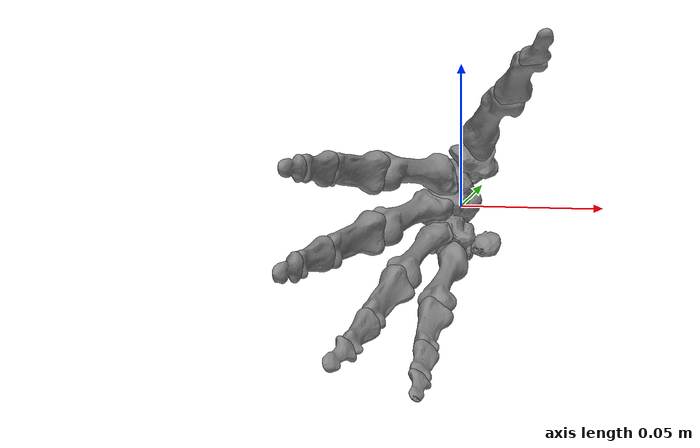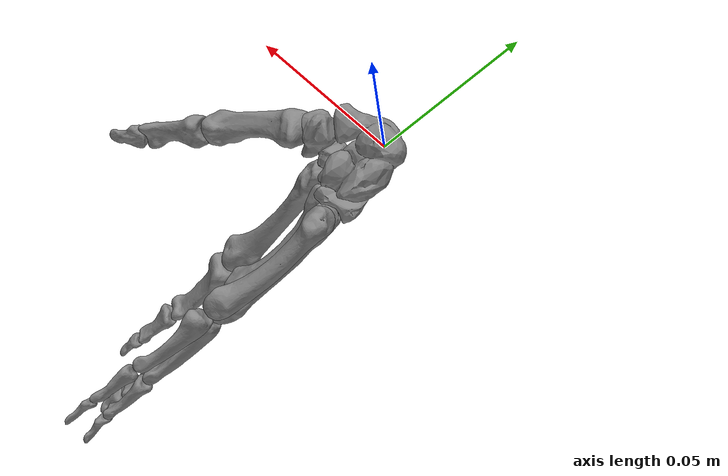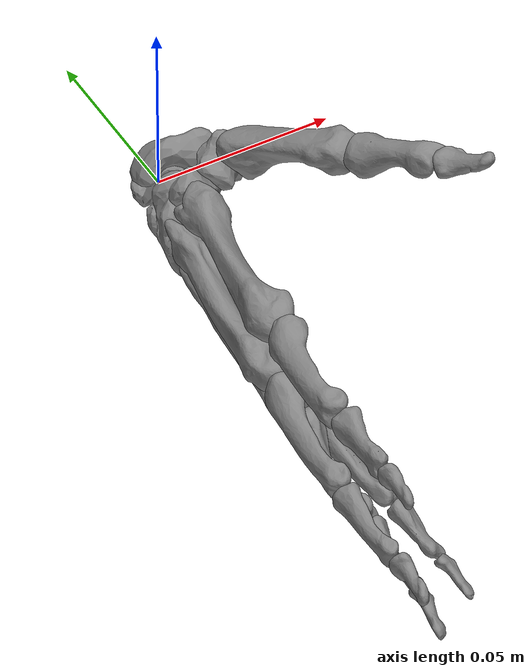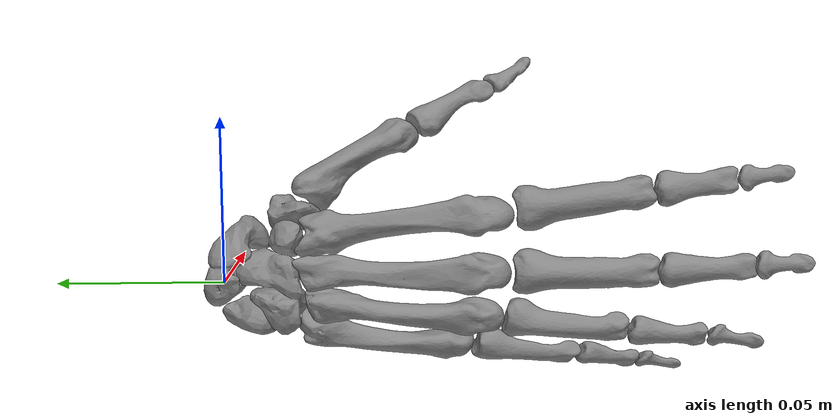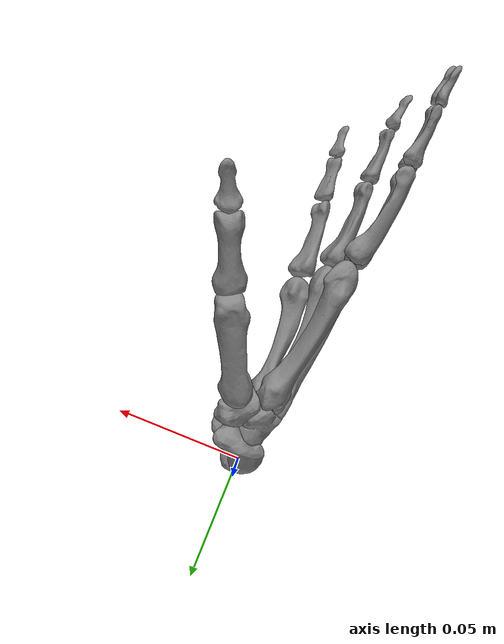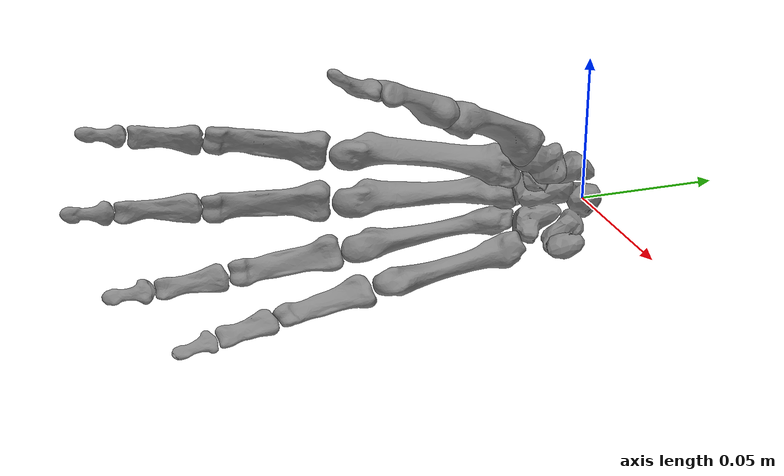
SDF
<?xml version='1.0' encoding='utf8'?>
<sdf version="1.6">
	<model name="Hand9DOF">
		<pose>0.0 0.0 0.0 0.0 -1.5707963705062866 0.0</pose>
		<link name="Wrist">
			<gravity>true</gravity>
			<self_collide>true</self_collide>
			<pose>0.0 0.0 0.0 0.0 -0.0 0.0</pose>
			<inertial>
				<mass>1.0</mass>
				<inertia>
					<ixx>1.0</ixx>
					<ixy>0.0</ixy>
					<ixz>0.0</ixz>
					<iyy>1.0</iyy>
					<iyz>0.0</iyz>
					<izz>1.0</izz>
				</inertia>
				<pose>0 0 0 0 0 0</pose>
			</inertial>
			<visual name="VIS_wrist">
				<pose>0.0 0.0 0.0 -0.0 1.570796251296997 0.0</pose>
				<geometry>
					<mesh>
						<uri>model://Hand9DOF/meshes/visual/VIS_wrist.dae</uri>
						<scale>1.0 1.0 1.0</scale>
					</mesh>
				</geometry>
			</visual>
		</link>
		<link name="IndexCMC">
			<gravity>true</gravity>
			<self_collide>true</self_collide>
			<pose>0.013055000454187393 -0.019176999107003212 -0.00018200000340584666 0.0 -0.0 0.0</pose>
			<inertial>
				<mass>1.0</mass>
				<inertia>
					<ixx>1.0</ixx>
					<ixy>0.0</ixy>
					<ixz>0.0</ixz>
					<iyy>1.0</iyy>
					<iyz>0.0</iyz>
					<izz>1.0</izz>
				</inertia>
				<pose>0 0 0 0 0 0</pose>
			</inertial>
			<visual name="VIS_2mc">
				<pose>-1.0988230769726215e-07 3.725290298461914e-09 -1.6081712317372876e-07 -0.0 1.570796251296997 0.0</pose>
				<geometry>
					<mesh>
						<uri>model://Hand9DOF/meshes/visual/VIS_2mc.dae</uri>
						<scale>1.0 1.0 1.0</scale>
					</mesh>
				</geometry>
			</visual>
		</link>
		<link name="IndexMCP_FE">
			<gravity>true</gravity>
			<self_collide>true</self_collide>
			<pose>0.022178000770509243 -0.0809169989079237 0.010978999533108436 0.0 -0.0 0.0</pose>
			<inertial>
				<mass>1.0</mass>
				<inertia>
					<ixx>1.0</ixx>
					<ixy>0.0</ixy>
					<ixz>0.0</ixz>
					<iyy>1.0</iyy>
					<iyz>0.0</iyz>
					<izz>1.0</izz>
				</inertia>
				<pose>0 0 0 0 0 0</pose>
			</inertial>
		</link>
		<link name="IndexMCP_AA">
			<gravity>true</gravity>
			<self_collide>true</self_collide>
			<pose>0.022178000770509243 -0.0809169989079237 0.010978999533108436 0.0 -0.0 0.0</pose>
			<inertial>
				<mass>1.0</mass>
				<inertia>
					<ixx>1.0</ixx>
					<ixy>0.0</ixy>
					<ixz>0.0</ixz>
					<iyy>1.0</iyy>
					<iyz>0.0</iyz>
					<izz>1.0</izz>
				</inertia>
				<pose>0 0 0 0 0 0</pose>
			</inertial>
			<visual name="VIS_2proxph">
				<pose>6.621689419006316e-09 -1.1920928955078125e-07 -1.1195747662284816e-09 -0.0 1.570796251296997 0.0</pose>
				<geometry>
					<mesh>
						<uri>model://Hand9DOF/meshes/visual/VIS_2proxph.dae</uri>
						<scale>1.0 1.0 1.0</scale>
					</mesh>
				</geometry>
			</visual>
		</link>
		<link name="IndexPIP">
			<gravity>true</gravity>
			<self_collide>true</self_collide>
			<pose>0.02969500096514821 -0.12219000048935413 0.018304999437532388 0.0 -0.0 0.0</pose>
			<inertial>
				<mass>1.0</mass>
				<inertia>
					<ixx>1.0</ixx>
					<ixy>0.0</ixy>
					<ixz>0.0</ixz>
					<iyy>1.0</iyy>
					<iyz>0.0</iyz>
					<izz>1.0</izz>
				</inertia>
				<pose>0 0 0 0 0 0</pose>
			</inertial>
			<visual name="VIS_2midph">
				<pose>1.5381818485593612e-08 -1.4901161193847656e-07 -2.3835120543935773e-08 -0.0 1.570796251296997 0.0</pose>
				<geometry>
					<mesh>
						<uri>model://Hand9DOF/meshes/visual/VIS_2midph.dae</uri>
						<scale>1.0 1.0 1.0</scale>
					</mesh>
				</geometry>
			</visual>
		</link>
		<link name="IndexDIP">
			<gravity>true</gravity>
			<self_collide>true</self_collide>
			<pose>0.033028000965714455 -0.1470780000090599 0.019524999413988553 0.0 -0.0 0.0</pose>
			<inertial>
				<mass>1.0</mass>
				<inertia>
					<ixx>1.0</ixx>
					<ixy>0.0</ixy>
					<ixz>0.0</ixz>
					<iyy>1.0</iyy>
					<iyz>0.0</iyz>
					<izz>1.0</izz>
				</inertia>
				<pose>0 0 0 0 0 0</pose>
			</inertial>
			<visual name="VIS_2distph">
				<pose>1.7152355979987988e-08 -8.940696716308594e-08 -4.9570347826488614e-09 -0.0 1.570796251296997 0.0</pose>
				<geometry>
					<mesh>
						<uri>model://Hand9DOF/meshes/visual/VIS_2distph.dae</uri>
						<scale>1.0 1.0 1.0</scale>
					</mesh>
				</geometry>
			</visual>
		</link>
		<link name="MiddleCMC">
			<gravity>true</gravity>
			<self_collide>true</self_collide>
			<pose>0.003857000032439828 -0.015337999910116196 0.002463999902829528 0.0 -0.0 0.0</pose>
			<inertial>
				<mass>1.0</mass>
				<inertia>
					<ixx>1.0</ixx>
					<ixy>0.0</ixy>
					<ixz>0.0</ixz>
					<iyy>1.0</iyy>
					<iyz>0.0</iyz>
					<izz>1.0</izz>
				</inertia>
				<pose>0 0 0 0 0 0</pose>
			</inertial>
			<visual name="VIS_3mc">
				<pose>-3.287100298621226e-07 4.423782229423523e-07 -3.501189382859593e-07 -0.0 1.570796251296997 0.0</pose>
				<geometry>
					<mesh>
						<uri>model://Hand9DOF/meshes/visual/VIS_3mc.dae</uri>
						<scale>1.0 1.0 1.0</scale>
					</mesh>
				</geometry>
			</visual>
		</link>
		<link name="MiddleMCP_FE">
			<gravity>true</gravity>
			<self_collide>true</self_collide>
			<pose>0.004709000058937818 -0.08058300241827965 0.011482000118121505 0.0 -0.0 0.0</pose>
			<inertial>
				<mass>1.0</mass>
				<inertia>
					<ixx>1.0</ixx>
					<ixy>0.0</ixy>
					<ixz>0.0</ixz>
					<iyy>1.0</iyy>
					<iyz>0.0</iyz>
					<izz>1.0</izz>
				</inertia>
				<pose>0 0 0 0 0 0</pose>
			</inertial>
		</link>
		<link name="MiddleMCP_AA">
			<gravity>true</gravity>
			<self_collide>true</self_collide>
			<pose>0.004709000058937818 -0.08058300241827965 0.011482000118121505 0.0 -0.0 0.0</pose>
			<inertial>
				<mass>1.0</mass>
				<inertia>
					<ixx>1.0</ixx>
					<ixy>0.0</ixy>
					<ixz>0.0</ixz>
					<iyy>1.0</iyy>
					<iyz>0.0</iyz>
					<izz>1.0</izz>
				</inertia>
				<pose>0 0 0 0 0 0</pose>
			</inertial>
			<visual name="VIS_3proxph">
				<pose>3.7897471827363916e-09 1.4901161193847656e-07 -1.454564113601009e-08 -0.0 1.570796251296997 0.0</pose>
				<geometry>
					<mesh>
						<uri>model://Hand9DOF/meshes/visual/VIS_3proxph.dae</uri>
						<scale>1.0 1.0 1.0</scale>
					</mesh>
				</geometry>
			</visual>
		</link>
		<link name="MiddlePIP">
			<gravity>true</gravity>
			<self_collide>true</self_collide>
			<pose>0.006359000049997121 -0.12479400262236595 0.017712000058963895 0.0 -0.0 0.0</pose>
			<inertial>
				<mass>1.0</mass>
				<inertia>
					<ixx>1.0</ixx>
					<ixy>0.0</ixy>
					<ixz>0.0</ixz>
					<iyy>1.0</iyy>
					<iyz>0.0</iyz>
					<izz>1.0</izz>
				</inertia>
				<pose>0 0 0 0 0 0</pose>
			</inertial>
			<visual name="VIS_3midph">
				<pose>-2.0894990626629806e-08 1.1920928955078125e-07 -3.304752382859988e-08 -0.0 1.570796251296997 0.0</pose>
				<geometry>
					<mesh>
						<uri>model://Hand9DOF/meshes/visual/VIS_3midph.dae</uri>
						<scale>1.0 1.0 1.0</scale>
					</mesh>
				</geometry>
			</visual>
		</link>
		<link name="MiddleDIP">
			<gravity>true</gravity>
			<self_collide>true</self_collide>
			<pose>0.007724000082816929 -0.15384100191295147 0.019666000036522746 0.0 -0.0 0.0</pose>
			<inertial>
				<mass>1.0</mass>
				<inertia>
					<ixx>1.0</ixx>
					<ixy>0.0</ixy>
					<ixz>0.0</ixz>
					<iyy>1.0</iyy>
					<iyz>0.0</iyz>
					<izz>1.0</izz>
				</inertia>
				<pose>0 0 0 0 0 0</pose>
			</inertial>
			<visual name="VIS_3distph">
				<pose>-1.5454579838092286e-08 8.940696716308594e-08 -1.4318016106074083e-08 -0.0 1.570796251296997 0.0</pose>
				<geometry>
					<mesh>
						<uri>model://Hand9DOF/meshes/visual/VIS_3distph.dae</uri>
						<scale>1.0 1.0 1.0</scale>
					</mesh>
				</geometry>
			</visual>
		</link>
		<link name="RingCMC">
			<gravity>true</gravity>
			<self_collide>true</self_collide>
			<pose>-0.006366000045090914 -0.017550000920891762 0.0015780000248923898 0.0 -0.0 0.0</pose>
			<inertial>
				<mass>1.0</mass>
				<inertia>
					<ixx>1.0</ixx>
					<ixy>0.0</ixy>
					<ixz>0.0</ixz>
					<iyy>1.0</iyy>
					<iyz>0.0</iyz>
					<izz>1.0</izz>
				</inertia>
				<pose>0 0 0 0 0 0</pose>
			</inertial>
			<visual name="VIS_4mc">
				<pose>-1.1910253339131316e-10 1.471489667892456e-07 -4.397156203594932e-07 -0.0 1.570796251296997 0.0</pose>
				<geometry>
					<mesh>
						<uri>model://Hand9DOF/meshes/visual/VIS_4mc.dae</uri>
						<scale>1.0 1.0 1.0</scale>
					</mesh>
				</geometry>
			</visual>
		</link>
		<link name="RingMCP_FE">
			<gravity>true</gravity>
			<self_collide>true</self_collide>
			<pose>-0.00988400005735457 -0.07926200143992901 0.005667000194080174 0.0 -0.0 0.0</pose>
			<inertial>
				<mass>1.0</mass>
				<inertia>
					<ixx>1.0</ixx>
					<ixy>0.0</ixy>
					<ixz>0.0</ixz>
					<iyy>1.0</iyy>
					<iyz>0.0</iyz>
					<izz>1.0</izz>
				</inertia>
				<pose>0 0 0 0 0 0</pose>
			</inertial>
		</link>
		<link name="RingMCP_AA">
			<gravity>true</gravity>
			<self_collide>true</self_collide>
			<pose>-0.00988400005735457 -0.07926200143992901 0.005667000194080174 0.0 -0.0 0.0</pose>
			<inertial>
				<mass>1.0</mass>
				<inertia>
					<ixx>1.0</ixx>
					<ixy>0.0</ixy>
					<ixz>0.0</ixz>
					<iyy>1.0</iyy>
					<iyz>0.0</iyz>
					<izz>1.0</izz>
				</inertia>
				<pose>0 0 0 0 0 0</pose>
			</inertial>
			<visual name="VIS_4proxph">
				<pose>1.434799612454185e-09 2.9802322387695312e-08 -1.4716059482111632e-08 -0.0 1.570796251296997 0.0</pose>
				<geometry>
					<mesh>
						<uri>model://Hand9DOF/meshes/visual/VIS_4proxph.dae</uri>
						<scale>1.0 1.0 1.0</scale>
					</mesh>
				</geometry>
			</visual>
		</link>
		<link name="RingPIP">
			<gravity>true</gravity>
			<self_collide>true</self_collide>
			<pose>-0.013412000145763159 -0.11951700039207935 0.007012000191025436 0.0 -0.0 0.0</pose>
			<inertial>
				<mass>1.0</mass>
				<inertia>
					<ixx>1.0</ixx>
					<ixy>0.0</ixy>
					<ixz>0.0</ixz>
					<iyy>1.0</iyy>
					<iyz>0.0</iyz>
					<izz>1.0</izz>
				</inertia>
				<pose>0 0 0 0 0 0</pose>
			</inertial>
			<visual name="VIS_4midph">
				<pose>2.264577858568373e-09 -8.940696716308594e-08 -2.196733639436843e-08 -0.0 1.570796251296997 0.0</pose>
				<geometry>
					<mesh>
						<uri>model://Hand9DOF/meshes/visual/VIS_4midph.dae</uri>
						<scale>1.0 1.0 1.0</scale>
					</mesh>
				</geometry>
			</visual>
		</link>
		<link name="RingDIP">
			<gravity>true</gravity>
			<self_collide>true</self_collide>
			<pose>-0.01572900009341538 -0.1443060003221035 0.007575000170618296 0.0 -0.0 0.0</pose>
			<inertial>
				<mass>1.0</mass>
				<inertia>
					<ixx>1.0</ixx>
					<ixy>0.0</ixy>
					<ixz>0.0</ixz>
					<iyy>1.0</iyy>
					<iyz>0.0</iyz>
					<izz>1.0</izz>
				</inertia>
				<pose>0 0 0 0 0 0</pose>
			</inertial>
			<visual name="VIS_4distph">
				<pose>-9.885120277886017e-09 0.0 -2.6333216496254863e-08 -0.0 1.570796251296997 0.0</pose>
				<geometry>
					<mesh>
						<uri>model://Hand9DOF/meshes/visual/VIS_4distph.dae</uri>
						<scale>1.0 1.0 1.0</scale>
					</mesh>
				</geometry>
			</visual>
		</link>
		<link name="LittleCMC">
			<gravity>true</gravity>
			<self_collide>true</self_collide>
			<pose>-0.013151000253856182 -0.017550000920891762 0.0015780000248923898 0.0 -0.0 0.0</pose>
			<inertial>
				<mass>1.0</mass>
				<inertia>
					<ixx>1.0</ixx>
					<ixy>0.0</ixy>
					<ixz>0.0</ixz>
					<iyy>1.0</iyy>
					<iyz>0.0</iyz>
					<izz>1.0</izz>
				</inertia>
				<pose>0 0 0 0 0 0</pose>
			</inertial>
			<visual name="VIS_5mc">
				<pose>-1.1910253339131316e-10 1.471489667892456e-07 -4.402278932502668e-07 -0.0 1.570796251296997 0.0</pose>
				<geometry>
					<mesh>
						<uri>model://Hand9DOF/meshes/visual/VIS_5mc.dae</uri>
						<scale>1.0 1.0 1.0</scale>
					</mesh>
				</geometry>
			</visual>
		</link>
		<link name="LittleMCP_FE">
			<gravity>true</gravity>
			<self_collide>true</self_collide>
			<pose>-0.019501000177115202 -0.07116799987852573 -0.003386999829672277 0.0 -0.0 0.0</pose>
			<inertial>
				<mass>1.0</mass>
				<inertia>
					<ixx>1.0</ixx>
					<ixy>0.0</ixy>
					<ixz>0.0</ixz>
					<iyy>1.0</iyy>
					<iyz>0.0</iyz>
					<izz>1.0</izz>
				</inertia>
				<pose>0 0 0 0 0 0</pose>
			</inertial>
		</link>
		<link name="LittleMCP_AA">
			<gravity>true</gravity>
			<self_collide>true</self_collide>
			<pose>-0.019501000177115202 -0.07116799987852573 -0.003386999829672277 0.0 -0.0 0.0</pose>
			<inertial>
				<mass>1.0</mass>
				<inertia>
					<ixx>1.0</ixx>
					<ixy>0.0</ixy>
					<ixz>0.0</ixz>
					<iyy>1.0</iyy>
					<iyz>0.0</iyz>
					<izz>1.0</izz>
				</inertia>
				<pose>0 0 0 0 0 0</pose>
			</inertial>
			<visual name="VIS_5proxph">
				<pose>2.1183568232885364e-09 2.9802322387695312e-08 -5.663236102293467e-09 -0.0 1.570796251296997 0.0</pose>
				<geometry>
					<mesh>
						<uri>model://Hand9DOF/meshes/visual/VIS_5proxph.dae</uri>
						<scale>1.0 1.0 1.0</scale>
					</mesh>
				</geometry>
			</visual>
		</link>
		<link name="LittlePIP">
			<gravity>true</gravity>
			<self_collide>true</self_collide>
			<pose>-0.02478000009432435 -0.1067309994250536 -0.006265999865718186 0.0 -0.0 0.0</pose>
			<inertial>
				<mass>1.0</mass>
				<inertia>
					<ixx>1.0</ixx>
					<ixy>0.0</ixy>
					<ixz>0.0</ixz>
					<iyy>1.0</iyy>
					<iyz>0.0</iyz>
					<izz>1.0</izz>
				</inertia>
				<pose>0 0 0 0 0 0</pose>
			</inertial>
			<visual name="VIS_5midph">
				<pose>2.8412747710149233e-08 0.0 -7.458771378310303e-09 -0.0 1.570796251296997 0.0</pose>
				<geometry>
					<mesh>
						<uri>model://Hand9DOF/meshes/visual/VIS_5midph.dae</uri>
						<scale>1.0 1.0 1.0</scale>
					</mesh>
				</geometry>
			</visual>
		</link>
		<link name="LittleDIP">
			<gravity>true</gravity>
			<self_collide>true</self_collide>
			<pose>-0.027651000069454312 -0.12740799970924854 -0.008508999948389828 0.0 -0.0 0.0</pose>
			<inertial>
				<mass>1.0</mass>
				<inertia>
					<ixx>1.0</ixx>
					<ixy>0.0</ixy>
					<ixz>0.0</ixz>
					<iyy>1.0</iyy>
					<iyz>0.0</iyz>
					<izz>1.0</izz>
				</inertia>
				<pose>0 0 0 0 0 0</pose>
			</inertial>
			<visual name="VIS_5distph">
				<pose>-1.0533459438022419e-08 0.0 -3.950238358640945e-09 -0.0 1.570796251296997 0.0</pose>
				<geometry>
					<mesh>
						<uri>model://Hand9DOF/meshes/visual/VIS_5distph.dae</uri>
						<scale>1.0 1.0 1.0</scale>
					</mesh>
				</geometry>
			</visual>
		</link>
		<link name="trapezium">
			<gravity>true</gravity>
			<self_collide>true</self_collide>
			<pose>0.019279999658465385 -0.01962199993431568 -0.007980999536812305 0.0 -0.0 0.0</pose>
			<inertial>
				<mass>1.0</mass>
				<inertia>
					<ixx>1.0</ixx>
					<ixy>0.0</ixy>
					<ixz>0.0</ixz>
					<iyy>1.0</iyy>
					<iyz>0.0</iyz>
					<izz>1.0</izz>
				</inertia>
				<pose>0 0 0 0 0 0</pose>
			</inertial>
			<visual name="VIS_trapezium">
				<pose>-1.8007399660291412e-07 1.1362135410308838e-07 -3.7759269844173105e-07 -0.0 1.570796251296997 0.0</pose>
				<geometry>
					<mesh>
						<uri>model://Hand9DOF/meshes/visual/VIS_trapezium.dae</uri>
						<scale>1.0 1.0 1.0</scale>
					</mesh>
				</geometry>
			</visual>
		</link>
		<link name="ThumbTMC_FE">
			<gravity>true</gravity>
			<self_collide>true</self_collide>
			<pose>0.019279999658465385 -0.01962199993431568 -0.007980999536812305 0.0 -0.0 0.0</pose>
			<inertial>
				<mass>1.0</mass>
				<inertia>
					<ixx>1.0</ixx>
					<ixy>0.0</ixy>
					<ixz>0.0</ixz>
					<iyy>1.0</iyy>
					<iyz>0.0</iyz>
					<izz>1.0</izz>
				</inertia>
				<pose>0 0 0 0 0 0</pose>
			</inertial>
		</link>
		<link name="ThumbTMC_AA">
			<gravity>true</gravity>
			<self_collide>true</self_collide>
			<pose>0.02516599977388978 -0.021548999939113855 -0.012679999694228172 0.0 -0.0 0.0</pose>
			<inertial>
				<mass>1.0</mass>
				<inertia>
					<ixx>1.0</ixx>
					<ixy>0.0</ixy>
					<ixz>0.0</ixz>
					<iyy>1.0</iyy>
					<iyz>0.0</iyz>
					<izz>1.0</izz>
				</inertia>
				<pose>0 0 0 0 0 0</pose>
			</inertial>
			<visual name="VIS_1mc">
				<pose>-9.053316984974913e-10 2.60770320892334e-08 3.733480191669969e-11 -0.0 1.570796251296997 0.0</pose>
				<geometry>
					<mesh>
						<uri>model://Hand9DOF/meshes/visual/VIS_1mc.dae</uri>
						<scale>1.0 1.0 1.0</scale>
					</mesh>
				</geometry>
			</visual>
		</link>
		<link name="ThumbMCP">
			<gravity>true</gravity>
			<self_collide>true</self_collide>
			<pose>0.04298500018194318 -0.05422299960628152 -0.023180999793112278 0.0 -0.0 0.0</pose>
			<inertial>
				<mass>1.0</mass>
				<inertia>
					<ixx>1.0</ixx>
					<ixy>0.0</ixy>
					<ixz>0.0</ixz>
					<iyy>1.0</iyy>
					<iyz>0.0</iyz>
					<izz>1.0</izz>
				</inertia>
				<pose>0 0 0 0 0 0</pose>
			</inertial>
			<visual name="VIS_thumbprox">
				<pose>1.7501169402578398e-09 5.960464477539063e-08 1.3826320088838884e-09 -0.0 1.570796251296997 0.0</pose>
				<geometry>
					<mesh>
						<uri>model://Hand9DOF/meshes/visual/VIS_thumbprox.dae</uri>
						<scale>1.0 1.0 1.0</scale>
					</mesh>
				</geometry>
			</visual>
		</link>
		<link name="ThumbIP">
			<gravity>true</gravity>
			<self_collide>true</self_collide>
			<pose>0.05698500061407685 -0.08012300031259656 -0.03328099939972162 0.0 -0.0 0.0</pose>
			<inertial>
				<mass>1.0</mass>
				<inertia>
					<ixx>1.0</ixx>
					<ixy>0.0</ixy>
					<ixz>0.0</ixz>
					<iyy>1.0</iyy>
					<iyz>0.0</iyz>
					<izz>1.0</izz>
				</inertia>
				<pose>0 0 0 0 0 0</pose>
			</inertial>
			<visual name="VIS_thumbdist">
				<pose>2.512646313235223e-09 -5.960464477539063e-08 -6.873623004111096e-09 -0.0 1.570796251296997 0.0</pose>
				<geometry>
					<mesh>
						<uri>model://Hand9DOF/meshes/visual/VIS_thumbdist.dae</uri>
						<scale>1.0 1.0 1.0</scale>
					</mesh>
				</geometry>
			</visual>
		</link>
		<joint name="IndexCMC_joint" type="revolute">
			<parent>Wrist</parent>
			<child>IndexCMC</child>
			<axis>
				<xyz>0.988 0.153 0.008</xyz>
				<dynamics>
					<damping>0.0</damping>
					<friction>0.0</friction>
					<spring_reference>0.0</spring_reference>
					<spring_stiffness>0.0</spring_stiffness>
				</dynamics>
				<limit>
					<lower>0.0</lower>
					<upper>0.08726646259971647</upper>
				</limit>
			</axis>
			<physics>
				<ode>
					<cfm_damping>false</cfm_damping>
					<implicit_spring_damper>false</implicit_spring_damper>
					<cfm>0.0</cfm>
					<erp>0.20000000298023224</erp>
				</ode>
			</physics>
		</joint>
		<joint name="IndexMCP_FE_joint" type="revolute">
			<parent>IndexCMC</parent>
			<child>IndexMCP_FE</child>
			<axis>
				<xyz>0.988 0.153 0.008</xyz>
				<dynamics>
					<damping>0.0</damping>
					<friction>0.0</friction>
					<spring_reference>0.0</spring_reference>
					<spring_stiffness>0.0</spring_stiffness>
				</dynamics>
				<limit>
					<lower>-0.17453292519943295</lower>
					<upper>1.5707963267948966</upper>
				</limit>
			</axis>
			<physics>
				<ode>
					<cfm_damping>false</cfm_damping>
					<implicit_spring_damper>false</implicit_spring_damper>
					<cfm>0.0</cfm>
					<erp>0.20000000298023224</erp>
				</ode>
			</physics>
		</joint>
		<joint name="IndexMCP_AA_joint" type="revolute">
			<parent>IndexMCP_FE</parent>
			<child>IndexMCP_AA</child>
			<axis>
				<xyz>-0.030 0.141 0.990</xyz>
				<dynamics>
					<damping>0.0</damping>
					<friction>0.0</friction>
					<spring_reference>0.0</spring_reference>
					<spring_stiffness>0.0</spring_stiffness>
				</dynamics>
				<limit>
					<lower>-0.2617993877991494</lower>
					<upper>0.2617993877991494</upper>
				</limit>
			</axis>
			<physics>
				<ode>
					<cfm_damping>false</cfm_damping>
					<implicit_spring_damper>false</implicit_spring_damper>
					<cfm>0.0</cfm>
					<erp>0.20000000298023224</erp>
				</ode>
			</physics>
		</joint>
		<joint name="IndexPIP_joint" type="revolute">
			<parent>IndexMCP_AA</parent>
			<child>IndexPIP</child>
			<axis>
				<xyz>0.988 0.153 0.008</xyz>
				<dynamics>
					<damping>0.0</damping>
					<friction>0.0</friction>
					<spring_reference>0.0</spring_reference>
					<spring_stiffness>0.0</spring_stiffness>
				</dynamics>
				<limit>
					<lower>0.0</lower>
					<upper>2.0943951023931953</upper>
				</limit>
			</axis>
			<physics>
				<ode>
					<cfm_damping>false</cfm_damping>
					<implicit_spring_damper>false</implicit_spring_damper>
					<cfm>0.0</cfm>
					<erp>0.20000000298023224</erp>
				</ode>
			</physics>
		</joint>
		<joint name="IndexDIP_joint" type="revolute">
			<parent>IndexPIP</parent>
			<child>IndexDIP</child>
			<axis>
				<xyz>0.988 0.153 0.008</xyz>
				<dynamics>
					<damping>0.0</damping>
					<friction>0.0</friction>
					<spring_reference>0.0</spring_reference>
					<spring_stiffness>0.0</spring_stiffness>
				</dynamics>
				<limit>
					<lower>0.0</lower>
					<upper>1.5707963267948966</upper>
				</limit>
			</axis>
			<physics>
				<ode>
					<cfm_damping>false</cfm_damping>
					<implicit_spring_damper>false</implicit_spring_damper>
					<cfm>0.0</cfm>
					<erp>0.20000000298023224</erp>
				</ode>
			</physics>
		</joint>
		<joint name="MiddleCMC_joint" type="revolute">
			<parent>Wrist</parent>
			<child>MiddleCMC</child>
			<axis>
				<xyz>0.980 0.052 0.194</xyz>
				<dynamics>
					<damping>0.0</damping>
					<friction>0.0</friction>
					<spring_reference>0.0</spring_reference>
					<spring_stiffness>0.0</spring_stiffness>
				</dynamics>
				<limit>
					<lower>0.0</lower>
					<upper>0.08726646259971647</upper>
				</limit>
			</axis>
			<physics>
				<ode>
					<cfm_damping>false</cfm_damping>
					<implicit_spring_damper>false</implicit_spring_damper>
					<cfm>0.0</cfm>
					<erp>0.20000000298023224</erp>
				</ode>
			</physics>
		</joint>
		<joint name="MiddleMCP_FE_joint" type="revolute">
			<parent>MiddleCMC</parent>
			<child>MiddleMCP_FE</child>
			<axis>
				<xyz>0.980 0.052 0.194</xyz>
				<dynamics>
					<damping>0.0</damping>
					<friction>0.0</friction>
					<spring_reference>0.0</spring_reference>
					<spring_stiffness>0.0</spring_stiffness>
				</dynamics>
				<limit>
					<lower>-0.17453292519943295</lower>
					<upper>1.5707963267948966</upper>
				</limit>
			</axis>
			<physics>
				<ode>
					<cfm_damping>false</cfm_damping>
					<implicit_spring_damper>false</implicit_spring_damper>
					<cfm>0.0</cfm>
					<erp>0.20000000298023224</erp>
				</ode>
			</physics>
		</joint>
		<joint name="MiddleMCP_AA_joint" type="revolute">
			<parent>MiddleMCP_FE</parent>
			<child>MiddleMCP_AA</child>
			<axis>
				<xyz>-0.198 0.082 0.977</xyz>
				<dynamics>
					<damping>0.0</damping>
					<friction>0.0</friction>
					<spring_reference>0.0</spring_reference>
					<spring_stiffness>0.0</spring_stiffness>
				</dynamics>
				<limit>
					<lower>-0.2617993877991494</lower>
					<upper>0.2617993877991494</upper>
				</limit>
			</axis>
			<physics>
				<ode>
					<cfm_damping>false</cfm_damping>
					<implicit_spring_damper>false</implicit_spring_damper>
					<cfm>0.0</cfm>
					<erp>0.20000000298023224</erp>
				</ode>
			</physics>
		</joint>
		<joint name="MiddlePIP_joint" type="revolute">
			<parent>MiddleMCP_AA</parent>
			<child>MiddlePIP</child>
			<axis>
				<xyz>0.980 0.052 0.194</xyz>
				<dynamics>
					<damping>0.0</damping>
					<friction>0.0</friction>
					<spring_reference>0.0</spring_reference>
					<spring_stiffness>0.0</spring_stiffness>
				</dynamics>
				<limit>
					<lower>0.0</lower>
					<upper>1.9198621771937625</upper>
				</limit>
			</axis>
			<physics>
				<ode>
					<cfm_damping>false</cfm_damping>
					<implicit_spring_damper>false</implicit_spring_damper>
					<cfm>0.0</cfm>
					<erp>0.20000000298023224</erp>
				</ode>
			</physics>
		</joint>
		<joint name="MiddleDIP_joint" type="revolute">
			<parent>MiddlePIP</parent>
			<child>MiddleDIP</child>
			<axis>
				<xyz>0.980 0.052 0.194</xyz>
				<dynamics>
					<damping>0.0</damping>
					<friction>0.0</friction>
					<spring_reference>0.0</spring_reference>
					<spring_stiffness>0.0</spring_stiffness>
				</dynamics>
				<limit>
					<lower>0.0</lower>
					<upper>1.5707963267948966</upper>
				</limit>
			</axis>
			<physics>
				<ode>
					<cfm_damping>false</cfm_damping>
					<implicit_spring_damper>false</implicit_spring_damper>
					<cfm>0.0</cfm>
					<erp>0.20000000298023224</erp>
				</ode>
			</physics>
		</joint>
		<joint name="RingCMC_joint" type="revolute">
			<parent>Wrist</parent>
			<child>RingCMC</child>
			<axis>
				<xyz>0.949 -0.070 0.309</xyz>
				<dynamics>
					<damping>0.0</damping>
					<friction>0.0</friction>
					<spring_reference>0.0</spring_reference>
					<spring_stiffness>0.0</spring_stiffness>
				</dynamics>
				<limit>
					<lower>0.0</lower>
					<upper>0.17453292519943295</upper>
				</limit>
			</axis>
			<physics>
				<ode>
					<cfm_damping>false</cfm_damping>
					<implicit_spring_damper>false</implicit_spring_damper>
					<cfm>0.0</cfm>
					<erp>0.20000000298023224</erp>
				</ode>
			</physics>
		</joint>
		<joint name="RingMCP_FE_joint" type="revolute">
			<parent>RingCMC</parent>
			<child>RingMCP_FE</child>
			<axis>
				<xyz>0.949 -0.070 0.309</xyz>
				<dynamics>
					<damping>0.0</damping>
					<friction>0.0</friction>
					<spring_reference>0.0</spring_reference>
					<spring_stiffness>0.0</spring_stiffness>
				</dynamics>
				<limit>
					<lower>-0.17453292519943295</lower>
					<upper>1.5707963267948966</upper>
				</limit>
			</axis>
			<physics>
				<ode>
					<cfm_damping>false</cfm_damping>
					<implicit_spring_damper>false</implicit_spring_damper>
					<cfm>0.0</cfm>
					<erp>0.20000000298023224</erp>
				</ode>
			</physics>
		</joint>
		<joint name="RingMCP_AA_joint" type="revolute">
			<parent>RingMCP_FE</parent>
			<child>RingMCP_AA</child>
			<axis>
				<xyz>-0.305 0.063 0.950</xyz>
				<dynamics>
					<damping>0.0</damping>
					<friction>0.0</friction>
					<spring_reference>0.0</spring_reference>
					<spring_stiffness>0.0</spring_stiffness>
				</dynamics>
				<limit>
					<lower>-0.2617993877991494</lower>
					<upper>0.2617993877991494</upper>
				</limit>
			</axis>
			<physics>
				<ode>
					<cfm_damping>false</cfm_damping>
					<implicit_spring_damper>false</implicit_spring_damper>
					<cfm>0.0</cfm>
					<erp>0.20000000298023224</erp>
				</ode>
			</physics>
		</joint>
		<joint name="RingPIP_joint" type="revolute">
			<parent>RingMCP_AA</parent>
			<child>RingPIP</child>
			<axis>
				<xyz>0.949 -0.070 0.309</xyz>
				<dynamics>
					<damping>0.0</damping>
					<friction>0.0</friction>
					<spring_reference>0.0</spring_reference>
					<spring_stiffness>0.0</spring_stiffness>
				</dynamics>
				<limit>
					<lower>0.0</lower>
					<upper>2.0943951023931953</upper>
				</limit>
			</axis>
			<physics>
				<ode>
					<cfm_damping>false</cfm_damping>
					<implicit_spring_damper>false</implicit_spring_damper>
					<cfm>0.0</cfm>
					<erp>0.20000000298023224</erp>
				</ode>
			</physics>
		</joint>
		<joint name="RingDIP_joint" type="revolute">
			<parent>RingPIP</parent>
			<child>RingDIP</child>
			<axis>
				<xyz>0.949 -0.070 0.309</xyz>
				<dynamics>
					<damping>0.0</damping>
					<friction>0.0</friction>
					<spring_reference>0.0</spring_reference>
					<spring_stiffness>0.0</spring_stiffness>
				</dynamics>
				<limit>
					<lower>0.0</lower>
					<upper>1.5707963267948966</upper>
				</limit>
			</axis>
			<physics>
				<ode>
					<cfm_damping>false</cfm_damping>
					<implicit_spring_damper>false</implicit_spring_damper>
					<cfm>0.0</cfm>
					<erp>0.20000000298023224</erp>
				</ode>
			</physics>
		</joint>
		<joint name="LittleCMC_joint" type="revolute">
			<parent>Wrist</parent>
			<child>LittleCMC</child>
			<axis>
				<xyz>0.898 -0.157 0.412</xyz>
				<dynamics>
					<damping>0.0</damping>
					<friction>0.0</friction>
					<spring_reference>0.0</spring_reference>
					<spring_stiffness>0.0</spring_stiffness>
				</dynamics>
				<limit>
					<lower>0.0</lower>
					<upper>0.2617993877991494</upper>
				</limit>
			</axis>
			<physics>
				<ode>
					<cfm_damping>false</cfm_damping>
					<implicit_spring_damper>false</implicit_spring_damper>
					<cfm>0.0</cfm>
					<erp>0.20000000298023224</erp>
				</ode>
			</physics>
		</joint>
		<joint name="LittleMCP_FE_joint" type="revolute">
			<parent>LittleCMC</parent>
			<child>LittleMCP_FE</child>
			<axis>
				<xyz>0.898 -0.157 0.412</xyz>
				<dynamics>
					<damping>0.0</damping>
					<friction>0.0</friction>
					<spring_reference>0.0</spring_reference>
					<spring_stiffness>0.0</spring_stiffness>
				</dynamics>
				<limit>
					<lower>-0.17453292519943295</lower>
					<upper>1.5707963267948966</upper>
				</limit>
			</axis>
			<physics>
				<ode>
					<cfm_damping>false</cfm_damping>
					<implicit_spring_damper>false</implicit_spring_damper>
					<cfm>0.0</cfm>
					<erp>0.20000000298023224</erp>
				</ode>
			</physics>
		</joint>
		<joint name="LittleMCP_AA_joint" type="revolute">
			<parent>LittleMCP_FE</parent>
			<child>LittleMCP_AA</child>
			<axis>
				<xyz>-0.422 -0.037 0.906</xyz>
				<dynamics>
					<damping>0.0</damping>
					<friction>0.0</friction>
					<spring_reference>0.0</spring_reference>
					<spring_stiffness>0.0</spring_stiffness>
				</dynamics>
				<limit>
					<lower>-0.2617993877991494</lower>
					<upper>0.2617993877991494</upper>
				</limit>
			</axis>
			<physics>
				<ode>
					<cfm_damping>false</cfm_damping>
					<implicit_spring_damper>false</implicit_spring_damper>
					<cfm>0.0</cfm>
					<erp>0.20000000298023224</erp>
				</ode>
			</physics>
		</joint>
		<joint name="LittlePIP_joint" type="revolute">
			<parent>LittleMCP_AA</parent>
			<child>LittlePIP</child>
			<axis>
				<xyz>0.898 -0.157 0.412</xyz>
				<dynamics>
					<damping>0.0</damping>
					<friction>0.0</friction>
					<spring_reference>0.0</spring_reference>
					<spring_stiffness>0.0</spring_stiffness>
				</dynamics>
				<limit>
					<lower>0.0</lower>
					<upper>2.356194490192345</upper>
				</limit>
			</axis>
			<physics>
				<ode>
					<cfm_damping>false</cfm_damping>
					<implicit_spring_damper>false</implicit_spring_damper>
					<cfm>0.0</cfm>
					<erp>0.20000000298023224</erp>
				</ode>
			</physics>
		</joint>
		<joint name="LittleDIP_joint" type="revolute">
			<parent>LittlePIP</parent>
			<child>LittleDIP</child>
			<axis>
				<xyz>0.898 -0.157 0.412</xyz>
				<dynamics>
					<damping>0.0</damping>
					<friction>0.0</friction>
					<spring_reference>0.0</spring_reference>
					<spring_stiffness>0.0</spring_stiffness>
				</dynamics>
				<limit>
					<lower>0.0</lower>
					<upper>1.5707963267948966</upper>
				</limit>
			</axis>
			<physics>
				<ode>
					<cfm_damping>false</cfm_damping>
					<implicit_spring_damper>false</implicit_spring_damper>
					<cfm>0.0</cfm>
					<erp>0.20000000298023224</erp>
				</ode>
			</physics>
		</joint>
		<joint name="trapezium_joint" type="fixed">
			<parent>Wrist</parent>
			<child>trapezium</child>
			<axis>
				<xyz>0.0 0.0 1.0</xyz>
				<dynamics>
					<damping>0.0</damping>
					<friction>0.0</friction>
					<spring_reference>0.0</spring_reference>
					<spring_stiffness>0.0</spring_stiffness>
				</dynamics>
			</axis>
			<physics>
				<ode>
					<cfm_damping>false</cfm_damping>
					<implicit_spring_damper>false</implicit_spring_damper>
					<cfm>0.0</cfm>
					<erp>0.20000000298023224</erp>
				</ode>
			</physics>
		</joint>
		<joint name="ThumbTMC_FE_joint" type="revolute">
			<parent>trapezium</parent>
			<child>ThumbTMC_FE</child>
			<axis>
				<xyz>0.028 0.407 -0.913</xyz>
				<dynamics>
					<damping>0.0</damping>
					<friction>0.0</friction>
					<spring_reference>0.0</spring_reference>
					<spring_stiffness>0.0</spring_stiffness>
				</dynamics>
				<limit>
					<lower>-0.7853981633974483</lower>
					<upper>0.5235987755982988</upper>
				</limit>
			</axis>
			<physics>
				<ode>
					<cfm_damping>false</cfm_damping>
					<implicit_spring_damper>false</implicit_spring_damper>
					<cfm>0.0</cfm>
					<erp>0.20000000298023224</erp>
				</ode>
			</physics>
		</joint>
		<joint name="ThumbTMC_AA_joint" type="revolute">
			<parent>ThumbTMC_FE</parent>
			<child>ThumbTMC_AA</child>
			<axis>
				<xyz>-0.496 0.731 -0.468</xyz>
				<dynamics>
					<damping>0.0</damping>
					<friction>0.0</friction>
					<spring_reference>0.0</spring_reference>
					<spring_stiffness>0.0</spring_stiffness>
				</dynamics>
				<limit>
					<lower>-0.4363323129985824</lower>
					<upper>0.4363323129985824</upper>
				</limit>
			</axis>
			<physics>
				<ode>
					<cfm_damping>false</cfm_damping>
					<implicit_spring_damper>false</implicit_spring_damper>
					<cfm>0.0</cfm>
					<erp>0.20000000298023224</erp>
				</ode>
			</physics>
		</joint>
		<joint name="ThumbMCP_joint" type="revolute">
			<parent>ThumbTMC_AA</parent>
			<child>ThumbMCP</child>
			<axis>
				<xyz>0.028 0.407 -0.913</xyz>
				<dynamics>
					<damping>0.0</damping>
					<friction>0.0</friction>
					<spring_reference>0.0</spring_reference>
					<spring_stiffness>0.0</spring_stiffness>
				</dynamics>
				<limit>
					<lower>0.0</lower>
					<upper>1.1344640137963142</upper>
				</limit>
			</axis>
			<physics>
				<ode>
					<cfm_damping>false</cfm_damping>
					<implicit_spring_damper>false</implicit_spring_damper>
					<cfm>0.0</cfm>
					<erp>0.20000000298023224</erp>
				</ode>
			</physics>
		</joint>
		<joint name="ThumbIP_joint" type="revolute">
			<parent>ThumbMCP</parent>
			<child>ThumbIP</child>
			<axis>
				<xyz>0.028 0.407 -0.913</xyz>
				<dynamics>
					<damping>0.0</damping>
					<friction>0.0</friction>
					<spring_reference>0.0</spring_reference>
					<spring_stiffness>0.0</spring_stiffness>
				</dynamics>
				<limit>
					<lower>-0.17453292519943295</lower>
					<upper>1.4835298641951802</upper>
				</limit>
			</axis>
			<physics>
				<ode>
					<cfm_damping>false</cfm_damping>
					<implicit_spring_damper>false</implicit_spring_damper>
					<cfm>0.0</cfm>
					<erp>0.20000000298023224</erp>
				</ode>
			</physics>
		</joint>
	</model>
</sdf>
